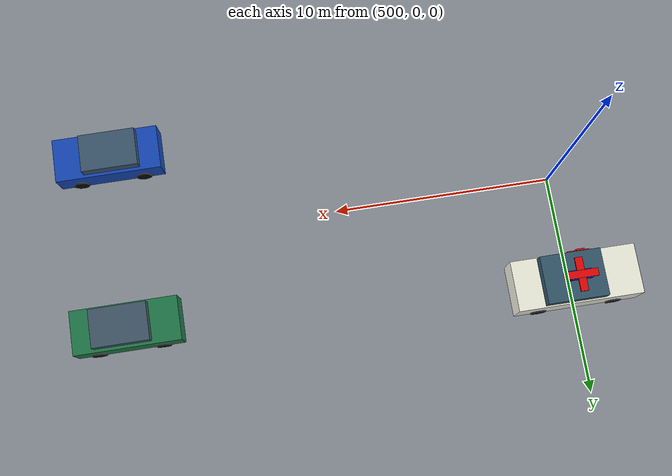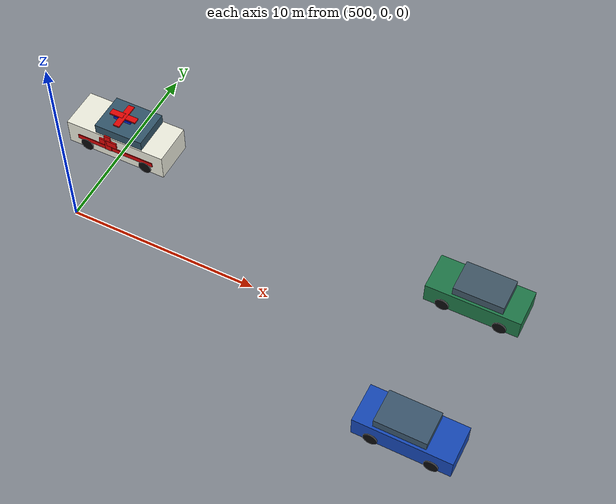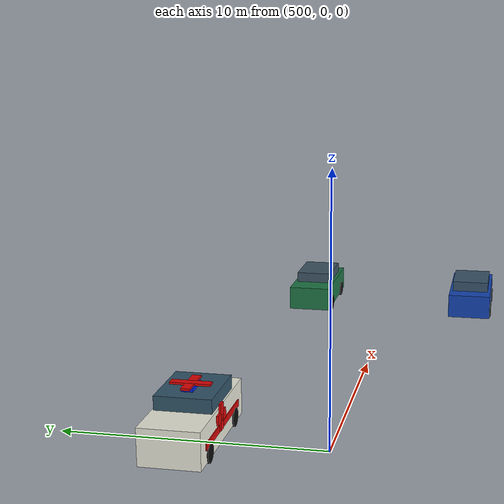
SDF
<sdf version="1.9">
 <world name="smart_city">
  <model name="downtown_car_20">
   <static>true</static>
   <pose>520 -4 0 0 0 0</pose>
   <link name="car">
    <visual name="body">
     <pose>0 0 0.72 0 0 0</pose>
     <geometry><box><size>4.8 2.0 1.1</size></box></geometry>
     <material><ambient>0.08 0.28 0.72 1</ambient><diffuse>0.08 0.28 0.72 1</diffuse></material>
    </visual>
    <visual name="cabin">
     <pose>-0.18 0 1.38 0 0 0</pose>
     <geometry><box><size>2.55 1.72 0.72</size></box></geometry>
     <material><ambient>0.23 0.34 0.43 1</ambient><diffuse>0.23 0.34 0.43 1</diffuse></material>
    </visual>
    <visual name="wheel_fl">
     <pose>1.45 0.96 0.36 1.5708 0 0</pose>
     <geometry><cylinder><radius>0.35</radius><length>0.18</length></cylinder></geometry>
     <material><ambient>0.04 0.04 0.045 1</ambient><diffuse>0.04 0.04 0.045 1</diffuse></material>
    </visual>
    <visual name="wheel_fr">
     <pose>1.45 -0.96 0.36 1.5708 0 0</pose>
     <geometry><cylinder><radius>0.35</radius><length>0.18</length></cylinder></geometry>
     <material><ambient>0.04 0.04 0.045 1</ambient><diffuse>0.04 0.04 0.045 1</diffuse></material>
    </visual>
    <visual name="wheel_rl">
     <pose>-1.45 0.96 0.36 1.5708 0 0</pose>
     <geometry><cylinder><radius>0.35</radius><length>0.18</length></cylinder></geometry>
     <material><ambient>0.04 0.04 0.045 1</ambient><diffuse>0.04 0.04 0.045 1</diffuse></material>
    </visual>
    <visual name="wheel_rr">
     <pose>-1.45 -0.96 0.36 1.5708 0 0</pose>
     <geometry><cylinder><radius>0.35</radius><length>0.18</length></cylinder></geometry>
     <material><ambient>0.04 0.04 0.045 1</ambient><diffuse>0.04 0.04 0.045 1</diffuse></material>
    </visual>
   </link>
  </model>
  <model name="downtown_car_28">
   <static>true</static>
   <pose>520 4 0 0 0 3.1416</pose>
   <link name="car">
    <visual name="body">
     <pose>0 0 0.72 0 0 0</pose>
     <geometry><box><size>4.8 2.0 1.1</size></box></geometry>
     <material><ambient>0.12 0.47 0.28 1</ambient><diffuse>0.12 0.47 0.28 1</diffuse></material>
    </visual>
    <visual name="cabin">
     <pose>-0.18 0 1.38 0 0 0</pose>
     <geometry><box><size>2.55 1.72 0.72</size></box></geometry>
     <material><ambient>0.25 0.34 0.40 1</ambient><diffuse>0.25 0.34 0.40 1</diffuse></material>
    </visual>
    <visual name="wheel_fl">
     <pose>1.45 0.96 0.36 1.5708 0 0</pose>
     <geometry><cylinder><radius>0.35</radius><length>0.18</length></cylinder></geometry>
     <material><ambient>0.04 0.04 0.045 1</ambient><diffuse>0.04 0.04 0.045 1</diffuse></material>
    </visual>
    <visual name="wheel_fr">
     <pose>1.45 -0.96 0.36 1.5708 0 0</pose>
     <geometry><cylinder><radius>0.35</radius><length>0.18</length></cylinder></geometry>
     <material><ambient>0.04 0.04 0.045 1</ambient><diffuse>0.04 0.04 0.045 1</diffuse></material>
    </visual>
    <visual name="wheel_rl">
     <pose>-1.45 0.96 0.36 1.5708 0 0</pose>
     <geometry><cylinder><radius>0.35</radius><length>0.18</length></cylinder></geometry>
     <material><ambient>0.04 0.04 0.045 1</ambient><diffuse>0.04 0.04 0.045 1</diffuse></material>
    </visual>
    <visual name="wheel_rr">
     <pose>-1.45 -0.96 0.36 1.5708 0 0</pose>
     <geometry><cylinder><radius>0.35</radius><length>0.18</length></cylinder></geometry>
     <material><ambient>0.04 0.04 0.045 1</ambient><diffuse>0.04 0.04 0.045 1</diffuse></material>
    </visual>
   </link>
  </model>
  <model name="district_ambulance_06">
   <static>true</static>
   <pose>500 5 0 0 0 3.1416</pose>
   <link name="ambulance">
    <visual name="body">
     <pose>0 0 0.82 0 0 0</pose>
     <geometry><box><size>5.6 2.25 1.4</size></box></geometry>
     <material><ambient>0.94 0.94 0.88 1</ambient><diffuse>0.94 0.94 0.88 1</diffuse></material>
    </visual>
    <visual name="medical_cabin">
     <pose>-0.25 0 1.62 0 0 0</pose>
     <geometry><box><size>2.7 2.12 0.86</size></box></geometry>
     <material><ambient>0.20 0.34 0.42 1</ambient><diffuse>0.20 0.34 0.42 1</diffuse></material>
    </visual>
    <visual name="red_side_stripe">
     <pose>0 1.14 0.76 0 0 0</pose>
     <geometry><box><size>4.4 0.05 0.26</size></box></geometry>
     <material><ambient>0.86 0.02 0.02 1</ambient><diffuse>0.86 0.02 0.02 1</diffuse></material>
    </visual>
    <visual name="red_side_cross_v">
     <pose>0.35 1.18 1.18 0 0 0</pose>
     <geometry><box><size>0.36 0.08 1.0</size></box></geometry>
     <material><ambient>0.9 0.02 0.02 1</ambient><diffuse>0.9 0.02 0.02 1</diffuse></material>
    </visual>
    <visual name="red_side_cross_h">
     <pose>0.35 1.18 1.18 0 0 0</pose>
     <geometry><box><size>1.0 0.08 0.36</size></box></geometry>
     <material><ambient>0.9 0.02 0.02 1</ambient><diffuse>0.9 0.02 0.02 1</diffuse></material>
    </visual>
    <visual name="lightbar">
     <pose>0 0 2.1 0 0 0</pose>
     <geometry><box><size>1.0 0.42 0.18</size></box></geometry>
     <material>
      <ambient>0.02 0.15 0.95 1</ambient>
      <diffuse>0.02 0.15 0.95 1</diffuse>
      <emissive>0.02 0.08 0.65 1</emissive>
     </material>
    </visual>
    <visual name="roof_cross_long">
     <pose>0 0 2.22 0 0 0</pose>
     <geometry><box><size>1.5 0.34 0.08</size></box></geometry>
     <material><ambient>0.9 0.02 0.02 1</ambient><diffuse>0.9 0.02 0.02 1</diffuse></material>
    </visual>
    <visual name="roof_cross_wide">
     <pose>0 0 2.22 0 0 0</pose>
     <geometry><box><size>0.34 1.5 0.08</size></box></geometry>
     <material><ambient>0.9 0.02 0.02 1</ambient><diffuse>0.9 0.02 0.02 1</diffuse></material>
    </visual>
    <visual name="wheel_fl">
     <pose>1.72 1.08 0.36 1.5708 0 0</pose>
     <geometry><cylinder><radius>0.36</radius><length>0.18</length></cylinder></geometry>
     <material><ambient>0.04 0.04 0.045 1</ambient><diffuse>0.04 0.04 0.045 1</diffuse></material>
    </visual>
    <visual name="wheel_fr">
     <pose>1.72 -1.08 0.36 1.5708 0 0</pose>
     <geometry><cylinder><radius>0.36</radius><length>0.18</length></cylinder></geometry>
     <material><ambient>0.04 0.04 0.045 1</ambient><diffuse>0.04 0.04 0.045 1</diffuse></material>
    </visual>
    <visual name="wheel_rl">
     <pose>-1.72 1.08 0.36 1.5708 0 0</pose>
     <geometry><cylinder><radius>0.36</radius><length>0.18</length></cylinder></geometry>
     <material><ambient>0.04 0.04 0.045 1</ambient><diffuse>0.04 0.04 0.045 1</diffuse></material>
    </visual>
    <visual name="wheel_rr">
     <pose>-1.72 -1.08 0.36 1.5708 0 0</pose>
     <geometry><cylinder><radius>0.36</radius><length>0.18</length></cylinder></geometry>
     <material><ambient>0.04 0.04 0.045 1</ambient><diffuse>0.04 0.04 0.045 1</diffuse></material>
    </visual>
   </link>
  </model>
 </world>
</sdf>
